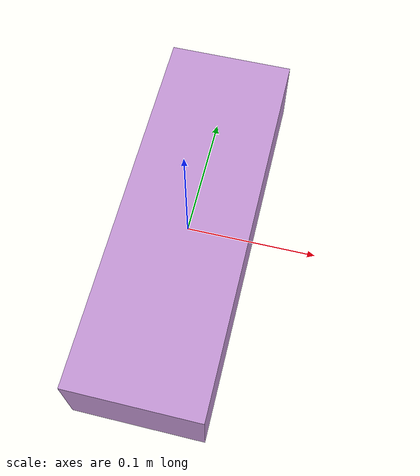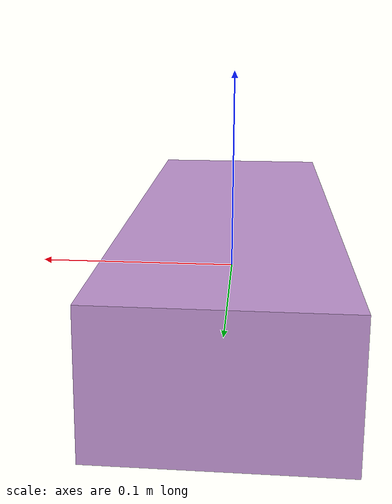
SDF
<?xml version="1.0"?>
<sdf version="1.7">
  <model name="block10">
    <pose> 0 0 0 0 0 0 </pose>
    <link name="block10_link">
      <inertial>
        <mass>1</mass>
        <inertia>
          <ixx>0.12845993351326745</ixx>
          <ixy>0.0</ixy>
          <ixz>0.0</ixz>
          <iyy>0.13658351124562848</iyy>
          <iyz>0.0</iyz>
          <izz>0.12426446138835252</izz>
        </inertia>
      </inertial>
      <collision name="collision">
        <geometry>
          <box>
            <size> 0.1 0.30000000000000004 0.06 </size>
          </box>
        </geometry>
      </collision>
      <visual name="visual">
        <geometry>
          <box>
            <size> 0.1 0.30000000000000004 0.06 </size>
          </box>
        </geometry>
        <material>
          <diffuse>0.7725490196078432 0.596078431372549 0.8392156862745098 1.0</diffuse>
        </material>
      </visual>
    </link>
  </model>
</sdf>
